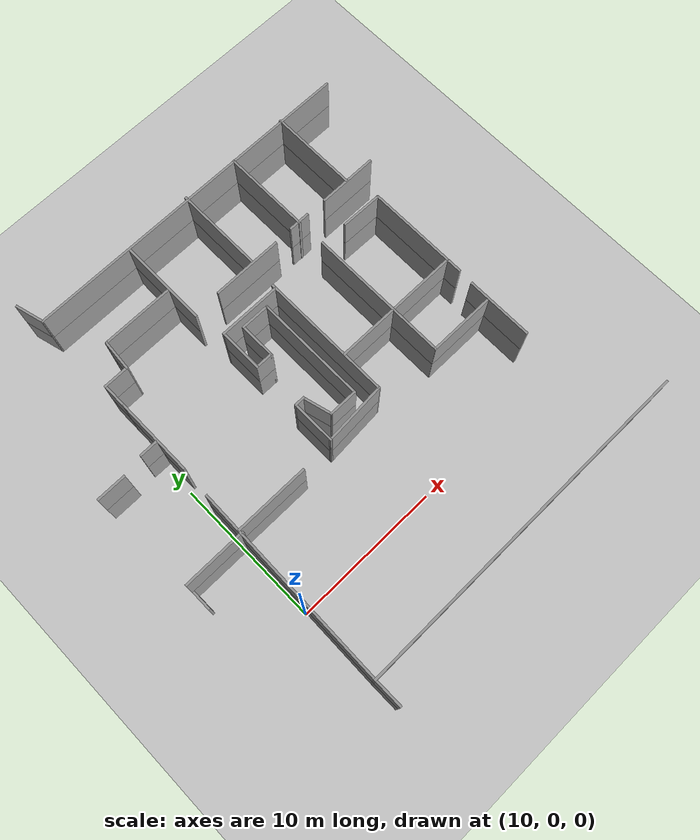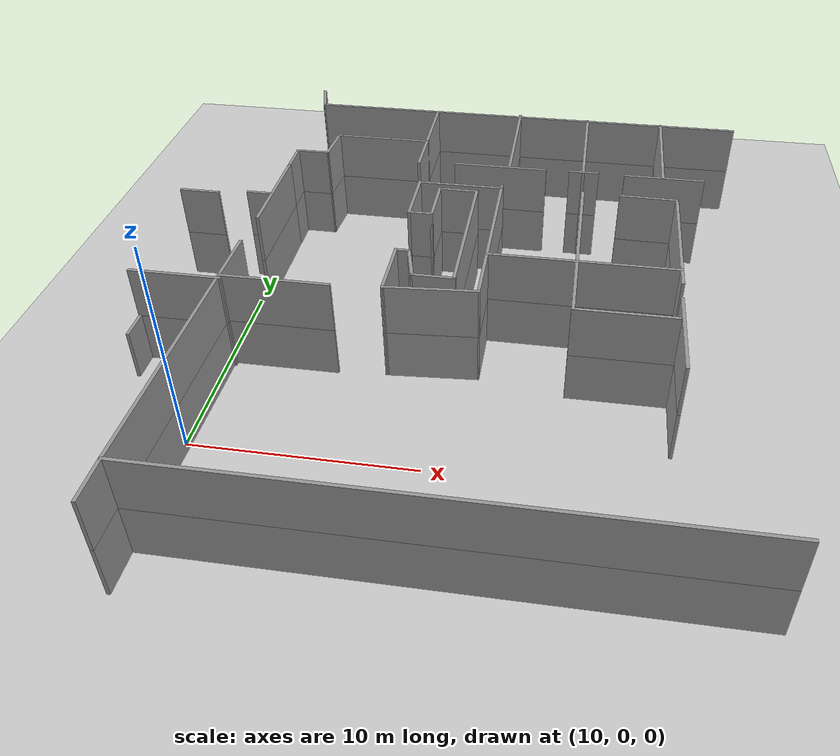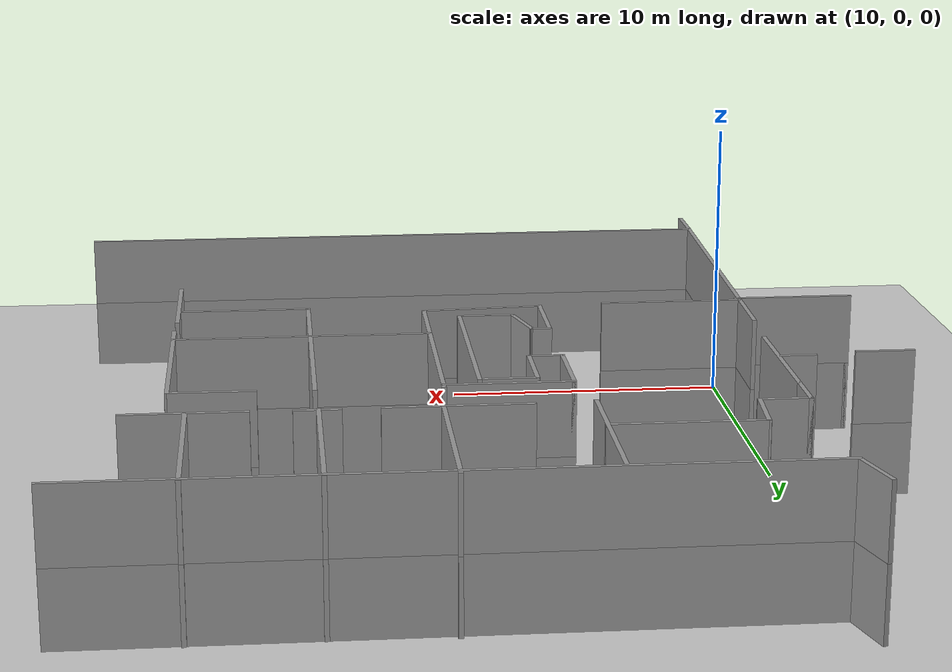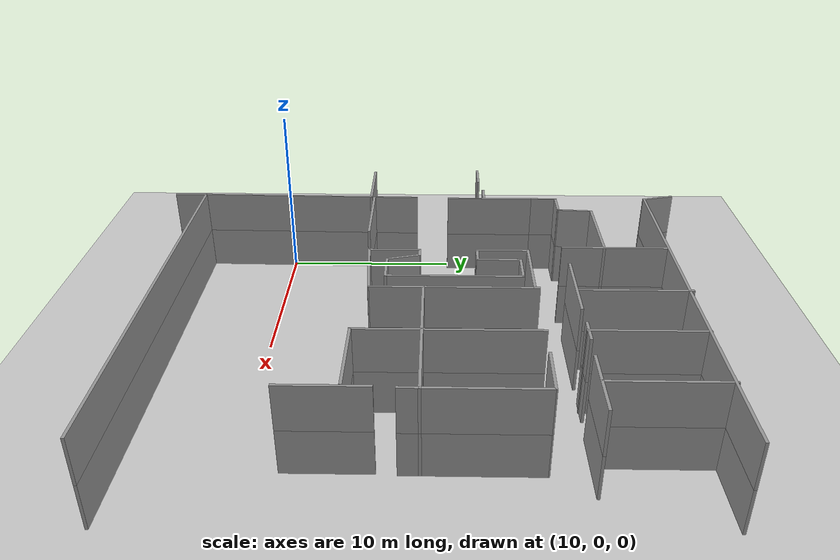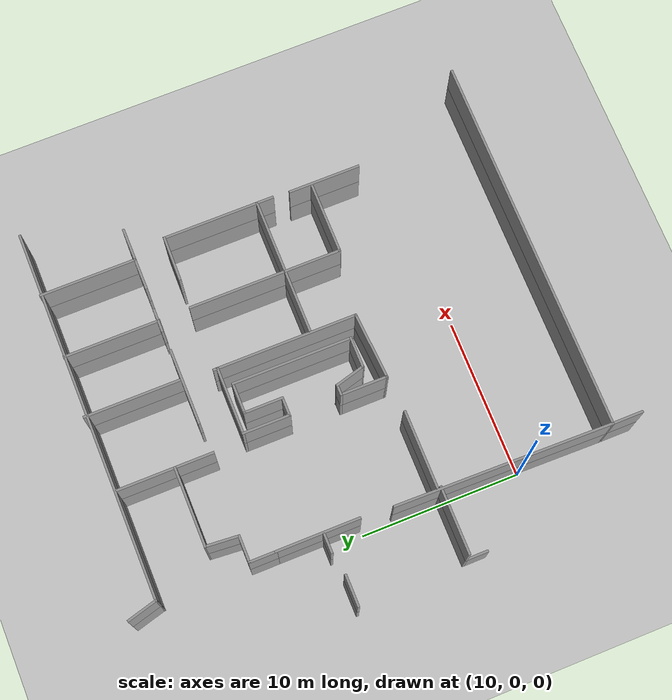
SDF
<sdf version="1.6">
 <world name="default">
  <model name="ground_plane">
   <static>1</static>
   <link name="link">
    <collision name="collision">
     <geometry><plane><normal>0 0 1</normal><size>100 100</size></plane></geometry>
     <surface>
      <contact><collide_bitmask>65535</collide_bitmask></contact>
      <friction><ode><mu>100</mu><mu2>50</mu2></ode></friction>
     </surface>
    </collision>
    <visual name="visual">
     <cast_shadows>0</cast_shadows>
     <geometry><plane><normal>0 0 1</normal><size>100 100</size></plane></geometry>
     <material>
      <script><uri>file://media/materials/scripts/gazebo.material</uri><name>Gazebo/Grey</name></script>
     </material>
    </visual>
   </link>
  </model>
  <model name="bush_refined_2floors">
   <pose>3.42472 8.10808 0 0 -0 0</pose>
   <link name="Wall_1000">
    <collision name="Wall_1000_Collision">
     <geometry><box><size>1.25 0.15 2.5</size></box></geometry>
     <pose>0 0 1.25 0 -0 0</pose>
    </collision>
    <visual name="Wall_1000_Visual">
     <pose>0 0 1.25 0 -0 0</pose>
     <geometry><box><size>1.25 0.15 2.5</size></box></geometry>
     <material>
      <script><uri>file://media/materials/scripts/gazebo.material</uri><name>Gazebo/Grey</name></script>
      <ambient>1 1 1 1</ambient>
     </material>
     <meta><layer>1</layer></meta>
    </visual>
    <pose>14.5533 3.51018 2.5 0 -0 0</pose>
   </link>
   <link name="Wall_1001">
    <collision name="Wall_1001_Collision">
     <geometry><box><size>2.5 0.15 2.5</size></box></geometry>
     <pose>0 0 1.25 0 -0 0</pose>
    </collision>
    <visual name="Wall_1001_Visual">
     <pose>0 0 1.25 0 -0 0</pose>
     <geometry><box><size>2.5 0.15 2.5</size></box></geometry>
     <material>
      <script><uri>file://media/materials/scripts/gazebo.material</uri><name>Gazebo/Grey</name></script>
      <ambient>1 1 1 1</ambient>
     </material>
     <meta><layer>1</layer></meta>
    </visual>
    <pose>15.1033 4.68518 2.5 0 -0 1.5708</pose>
   </link>
   <link name="Wall_1002">
    <collision name="Wall_1002_Collision">
     <geometry><box><size>2 0.15 2.5</size></box></geometry>
     <pose>0 0 1.25 0 -0 0</pose>
    </collision>
    <visual name="Wall_1002_Visual">
     <pose>0 0 1.25 0 -0 0</pose>
     <geometry><box><size>2 0.15 2.5</size></box></geometry>
     <material>
      <script><uri>file://media/materials/scripts/gazebo.material</uri><name>Gazebo/Grey</name></script>
      <ambient>1 1 1 1</ambient>
     </material>
     <meta><layer>1</layer></meta>
    </visual>
    <pose>16.0283 5.86018 2.5 0 -0 0</pose>
   </link>
   <link name="Wall_1003">
    <collision name="Wall_1003_Collision">
     <geometry><box><size>7.5 0.15 2.5</size></box></geometry>
     <pose>0 0 1.25 0 -0 0</pose>
    </collision>
    <visual name="Wall_1003_Visual">
     <pose>0 0 1.25 0 -0 0</pose>
     <geometry><box><size>7.5 0.15 2.5</size></box></geometry>
     <material>
      <script><uri>file://media/materials/scripts/gazebo.material</uri><name>Gazebo/Grey</name></script>
      <ambient>1 1 1 1</ambient>
     </material>
     <meta><layer>1</layer></meta>
    </visual>
    <pose>16.9533 2.18518 2.5 0 -0 -1.5708</pose>
   </link>
   <link name="Wall_1004">
    <collision name="Wall_1004_Collision">
     <geometry><box><size>2 0.15 2.5</size></box></geometry>
     <pose>0 0 1.25 0 -0 0</pose>
    </collision>
    <visual name="Wall_1004_Visual">
     <pose>0 0 1.25 0 -0 0</pose>
     <geometry><box><size>2 0.15 2.5</size></box></geometry>
     <material>
      <script><uri>file://media/materials/scripts/gazebo.material</uri><name>Gazebo/Grey</name></script>
      <ambient>1 1 1 1</ambient>
     </material>
     <meta><layer>1</layer></meta>
    </visual>
    <pose>16.0283 -1.48982 2.5 0 -0 3.14159</pose>
   </link>
   <link name="Wall_1005">
    <collision name="Wall_1005_Collision">
     <geometry><box><size>2 0.15 2.5</size></box></geometry>
     <pose>0 0 1.25 0 -0 0</pose>
    </collision>
    <visual name="Wall_1005_Visual">
     <pose>0 0 1.25 0 -0 0</pose>
     <geometry><box><size>2 0.15 2.5</size></box></geometry>
     <material>
      <script><uri>file://media/materials/scripts/gazebo.material</uri><name>Gazebo/Grey</name></script>
      <ambient>1 1 1 1</ambient>
     </material>
     <meta><layer>1</layer></meta>
    </visual>
    <pose>14.8639 -0.596338 2.5 0 -0 1.8326</pose>
   </link>
   <link name="Wall_1006">
    <collision name="Wall_1006_Collision">
     <geometry><box><size>0.75 0.15 2.5</size></box></geometry>
     <pose>0 0 1.25 0 -0 0</pose>
    </collision>
    <visual name="Wall_1006_Visual">
     <pose>0 0 1.25 0 -0 0</pose>
     <geometry><box><size>0.75 0.15 2.5</size></box></geometry>
     <material>
      <script><uri>file://media/materials/scripts/gazebo.material</uri><name>Gazebo/Grey</name></script>
      <ambient>1 1 1 1</ambient>
     </material>
     <meta><layer>1</layer></meta>
    </visual>
    <pose>14.3245 0.297143 2.5 0 -0 3.14159</pose>
   </link>
   <link name="Wall_1007">
    <collision name="Wall_1007_Collision">
     <geometry><box><size>3 0.15 2.5</size></box></geometry>
     <pose>0 0 1.25 0 -0 0</pose>
    </collision>
    <visual name="Wall_1007_Visual">
     <pose>0 0 1.25 0 -0 0</pose>
     <geometry><box><size>3 0.15 2.5</size></box></geometry>
     <material>
      <script><uri>file://media/materials/scripts/gazebo.material</uri><name>Gazebo/Grey</name></script>
      <ambient>1 1 1 1</ambient>
     </material>
     <meta><layer>1</layer></meta>
    </visual>
    <pose>14.0245 -1.12786 2.5 0 -0 -1.5708</pose>
   </link>
   <link name="Wall_1008">
    <collision name="Wall_1008_Collision">
     <geometry><box><size>4.26553 0.15 2.5</size></box></geometry>
     <pose>0 0 1.25 0 -0 0</pose>
    </collision>
    <visual name="Wall_1008_Visual">
     <pose>0 0 1.25 0 -0 0</pose>
     <geometry><box><size>4.26553 0.15 2.5</size></box></geometry>
     <material>
      <script><uri>file://media/materials/scripts/gazebo.material</uri><name>Gazebo/Grey</name></script>
      <ambient>1 1 1 1</ambient>
     </material>
     <meta><layer>1</layer></meta>
    </visual>
    <pose>16.0778 -2.4164 2.5 0 -0 0.066363</pose>
   </link>
   <link name="Wall_1009">
    <collision name="Wall_1009_Collision">
     <geometry><box><size>5 0.15 2.5</size></box></geometry>
     <pose>0 0 1.25 0 -0 0</pose>
    </collision>
    <visual name="Wall_1009_Visual">
     <pose>0 0 1.25 0 -0 0</pose>
     <geometry><box><size>5 0.15 2.5</size></box></geometry>
     <material>
      <script><uri>file://media/materials/scripts/gazebo.material</uri><name>Gazebo/Grey</name></script>
      <ambient>1 1 1 1</ambient>
     </material>
     <meta><layer>1</layer></meta>
    </visual>
    <pose>9.2924 -2.73465 2.5 0 -0 0</pose>
   </link>
   <link name="Wall_1010">
    <collision name="Wall_1010_Collision">
     <geometry><box><size>13.6092 0.15 2.5</size></box></geometry>
     <pose>0 0 1.25 0 -0 0</pose>
    </collision>
    <visual name="Wall_1010_Visual">
     <pose>0 0 1.25 0 -0 0</pose>
     <geometry><box><size>13.6092 0.15 2.5</size></box></geometry>
     <material>
      <script><uri>file://media/materials/scripts/gazebo.material</uri><name>Gazebo/Grey</name></script>
      <ambient>1 1 1 1</ambient>
     </material>
     <meta><layer>1</layer></meta>
    </visual>
    <pose>6.75021 -6.80477 2.5 0 -0 -1.58821</pose>
   </link>
   <link name="Wall_1011">
    <collision name="Wall_1011_Collision">
     <geometry><box><size>4.25 0.15 2.5</size></box></geometry>
     <pose>0 0 1.25 0 -0 0</pose>
    </collision>
    <visual name="Wall_1011_Visual">
     <pose>0 0 1.25 0 -0 0</pose>
     <geometry><box><size>4.25 0.15 2.5</size></box></geometry>
     <material>
      <script><uri>file://media/materials/scripts/gazebo.material</uri><name>Gazebo/Grey</name></script>
      <ambient>1 1 1 1</ambient>
     </material>
     <meta><layer>1</layer></meta>
    </visual>
    <pose>4.8597 -2.94453 2.5 0 -0 0</pose>
   </link>
   <link name="Wall_1026">
    <collision name="Wall_1026_Collision">
     <geometry><box><size>2 0.15 2.5</size></box></geometry>
     <pose>0 0 1.25 0 -0 0</pose>
    </collision>
    <visual name="Wall_1026_Visual">
     <pose>0 0 1.25 0 -0 0</pose>
     <geometry><box><size>2 0.15 2.5</size></box></geometry>
     <material>
      <script><uri>file://media/materials/scripts/gazebo.material</uri><name>Gazebo/Grey</name></script>
      <ambient>1 1 1 1</ambient>
     </material>
     <meta><layer>1</layer></meta>
    </visual>
    <pose>3.3613 3.95052 2.5 0 -0 0</pose>
   </link>
   <link name="Wall_1027">
    <collision name="Wall_1027_Collision">
     <geometry><box><size>1.25 0.15 2.5</size></box></geometry>
     <pose>0 0 1.25 0 -0 0</pose>
    </collision>
    <visual name="Wall_1027_Visual">
     <pose>0 0 1.25 0 -0 0</pose>
     <geometry><box><size>1.25 0.15 2.5</size></box></geometry>
     <material>
      <script><uri>file://media/materials/scripts/gazebo.material</uri><name>Gazebo/Grey</name></script>
      <ambient>1 1 1 1</ambient>
     </material>
     <meta><layer>1</layer></meta>
    </visual>
    <pose>6.32856 4.20873 2.5 0 -0 0</pose>
   </link>
   <link name="Wall_1028">
    <collision name="Wall_1028_Collision">
     <geometry><box><size>5.25 0.15 2.5</size></box></geometry>
     <pose>0 0 1.25 0 -0 0</pose>
    </collision>
    <visual name="Wall_1028_Visual">
     <pose>0 0 1.25 0 -0 0</pose>
     <geometry><box><size>5.25 0.15 2.5</size></box></geometry>
     <material>
      <script><uri>file://media/materials/scripts/gazebo.material</uri><name>Gazebo/Grey</name></script>
      <ambient>1 1 1 1</ambient>
     </material>
     <meta><layer>1</layer></meta>
    </visual>
    <pose>6.98538 4.55509 2.5 0 -0 -1.5708</pose>
   </link>
   <link name="Wall_1037">
    <collision name="Wall_1037_Collision">
     <geometry><box><size>4 0.15 2.5</size></box></geometry>
     <pose>0 0 1.25 0 -0 0</pose>
    </collision>
    <visual name="Wall_1037_Visual">
     <pose>0 0 1.25 0 -0 0</pose>
     <geometry><box><size>4 0.15 2.5</size></box></geometry>
     <material>
      <script><uri>file://media/materials/scripts/gazebo.material</uri><name>Gazebo/Grey</name></script>
      <ambient>1 1 1 1</ambient>
     </material>
     <meta><layer>1</layer></meta>
    </visual>
    <pose>26.1706 8.50236 2.5 0 -0 0</pose>
   </link>
   <link name="Wall_1038">
    <collision name="Wall_1038_Collision">
     <geometry><box><size>6 0.15 2.5</size></box></geometry>
     <pose>0 0 1.25 0 -0 0</pose>
    </collision>
    <visual name="Wall_1038_Visual">
     <pose>0 0 1.25 0 -0 0</pose>
     <geometry><box><size>6 0.15 2.5</size></box></geometry>
     <material>
      <script><uri>file://media/materials/scripts/gazebo.material</uri><name>Gazebo/Grey</name></script>
      <ambient>1 1 1 1</ambient>
     </material>
     <meta><layer>1</layer></meta>
    </visual>
    <pose>26.1209 11.4734 2.5 0 -0 -1.5708</pose>
   </link>
   <link name="Wall_1039">
    <collision name="Wall_1039_Collision">
     <geometry><box><size>6 0.15 2.5</size></box></geometry>
     <pose>0 0 1.25 0 -0 0</pose>
    </collision>
    <visual name="Wall_1039_Visual">
     <pose>0 0 1.25 0 -0 0</pose>
     <geometry><box><size>6 0.15 2.5</size></box></geometry>
     <material>
      <script><uri>file://media/materials/scripts/gazebo.material</uri><name>Gazebo/Grey</name></script>
      <ambient>1 1 1 1</ambient>
     </material>
     <meta><layer>1</layer></meta>
    </visual>
    <pose>22.0958 11.4276 2.5 0 -0 -1.5708</pose>
   </link>
   <link name="Wall_1040">
    <collision name="Wall_1040_Collision">
     <geometry><box><size>1.5 0.15 2.5</size></box></geometry>
     <pose>0 0 1.25 0 -0 0</pose>
    </collision>
    <visual name="Wall_1040_Visual">
     <pose>0 0 1.25 0 -0 0</pose>
     <geometry><box><size>1.5 0.15 2.5</size></box></geometry>
     <material>
      <script><uri>file://media/materials/scripts/gazebo.material</uri><name>Gazebo/Grey</name></script>
      <ambient>1 1 1 1</ambient>
     </material>
     <meta><layer>1</layer></meta>
    </visual>
    <pose>22.1304 8.5436 2.5 0 -0 0</pose>
   </link>
   <link name="Wall_1041">
    <collision name="Wall_1041_Collision">
     <geometry><box><size>4.75 0.15 2.5</size></box></geometry>
     <pose>0 0 1.25 0 -0 0</pose>
    </collision>
    <visual name="Wall_1041_Visual">
     <pose>0 0 1.25 0 -0 0</pose>
     <geometry><box><size>4.75 0.15 2.5</size></box></geometry>
     <material>
      <script><uri>file://media/materials/scripts/gazebo.material</uri><name>Gazebo/Grey</name></script>
      <ambient>1 1 1 1</ambient>
     </material>
     <meta><layer>1</layer></meta>
    </visual>
    <pose>17.829 8.49786 2.5 0 -0 3.14159</pose>
   </link>
   <link name="Wall_1042">
    <collision name="Wall_1042_Collision">
     <geometry><box><size>6 0.15 2.5</size></box></geometry>
     <pose>0 0 1.25 0 -0 0</pose>
    </collision>
    <visual name="Wall_1042_Visual">
     <pose>0 0 1.25 0 -0 0</pose>
     <geometry><box><size>6 0.15 2.5</size></box></geometry>
     <material>
      <script><uri>file://media/materials/scripts/gazebo.material</uri><name>Gazebo/Grey</name></script>
      <ambient>1 1 1 1</ambient>
     </material>
     <meta><layer>1</layer></meta>
    </visual>
    <pose>18.2993 11.5648 2.5 0 -0 -1.5708</pose>
   </link>
   <link name="Wall_1043">
    <collision name="Wall_1043_Collision">
     <geometry><box><size>6 0.15 2.5</size></box></geometry>
     <pose>0 0 1.25 0 -0 0</pose>
    </collision>
    <visual name="Wall_1043_Visual">
     <pose>0 0 1.25 0 -0 0</pose>
     <geometry><box><size>6 0.15 2.5</size></box></geometry>
     <material>
      <script><uri>file://media/materials/scripts/gazebo.material</uri><name>Gazebo/Grey</name></script>
      <ambient>1 1 1 1</ambient>
     </material>
     <meta><layer>1</layer></meta>
    </visual>
    <pose>13.5881 11.2904 2.5 0 -0 -1.5708</pose>
   </link>
   <link name="Wall_1044">
    <collision name="Wall_1044_Collision">
     <geometry><box><size>5 0.15 2.5</size></box></geometry>
     <pose>0 0 1.25 0 -0 0</pose>
    </collision>
    <visual name="Wall_1044_Visual">
     <pose>0 0 1.25 0 -0 0</pose>
     <geometry><box><size>5 0.15 2.5</size></box></geometry>
     <material>
      <script><uri>file://media/materials/scripts/gazebo.material</uri><name>Gazebo/Grey</name></script>
      <ambient>1 1 1 1</ambient>
     </material>
     <meta><layer>1</layer></meta>
    </visual>
    <pose>11.1646 10.6934 2.5 0 -0 0</pose>
   </link>
   <link name="Wall_1045">
    <collision name="Wall_1045_Collision">
     <geometry><box><size>1.75 0.15 2.5</size></box></geometry>
     <pose>0 0 1.25 0 -0 0</pose>
    </collision>
    <visual name="Wall_1045_Visual">
     <pose>0 0 1.25 0 -0 0</pose>
     <geometry><box><size>1.75 0.15 2.5</size></box></geometry>
     <material>
      <script><uri>file://media/materials/scripts/gazebo.material</uri><name>Gazebo/Grey</name></script>
      <ambient>1 1 1 1</ambient>
     </material>
     <meta><layer>1</layer></meta>
    </visual>
    <pose>6.98538 7.90509 2.5 0 -0 1.5708</pose>
   </link>
   <link name="Wall_1046">
    <collision name="Wall_1046_Collision">
     <geometry><box><size>1.75 0.15 2.5</size></box></geometry>
     <pose>0 0 1.25 0 -0 0</pose>
    </collision>
    <visual name="Wall_1046_Visual">
     <pose>0 0 1.25 0 -0 0</pose>
     <geometry><box><size>1.75 0.15 2.5</size></box></geometry>
     <material>
      <script><uri>file://media/materials/scripts/gazebo.material</uri><name>Gazebo/Grey</name></script>
      <ambient>1 1 1 1</ambient>
     </material>
     <meta><layer>1</layer></meta>
    </visual>
    <pose>7.78538 8.70509 2.5 0 -0 0</pose>
   </link>
   <link name="Wall_1047">
    <collision name="Wall_1047_Collision">
     <geometry><box><size>2.14428 0.15 2.5</size></box></geometry>
     <pose>0 0 1.25 0 -0 0</pose>
    </collision>
    <visual name="Wall_1047_Visual">
     <pose>0 0 1.25 0 -0 0</pose>
     <geometry><box><size>2.14428 0.15 2.5</size></box></geometry>
     <material>
      <script><uri>file://media/materials/scripts/gazebo.material</uri><name>Gazebo/Grey</name></script>
      <ambient>1 1 1 1</ambient>
     </material>
     <meta><layer>1</layer></meta>
    </visual>
    <pose>8.6625 9.69924 2.5 0 -0 1.49337</pose>
   </link>
   <link name="Wall_1048">
    <collision name="Wall_1048_Collision">
     <geometry><box><size>9.53767 0.15 2.5</size></box></geometry>
     <pose>0 0 1.25 0 -0 0</pose>
    </collision>
    <visual name="Wall_1048_Visual">
     <pose>0 0 1.25 0 -0 0</pose>
     <geometry><box><size>9.53767 0.15 2.5</size></box></geometry>
     <material>
      <script><uri>file://media/materials/scripts/gazebo.material</uri><name>Gazebo/Grey</name></script>
      <ambient>1 1 1 1</ambient>
     </material>
     <meta><layer>1</layer></meta>
    </visual>
    <pose>22.1579 1.82713 2.5 0 -0 -1.5708</pose>
   </link>
   <link name="Wall_1049">
    <collision name="Wall_1049_Collision">
     <geometry><box><size>4.5 0.15 2.5</size></box></geometry>
     <pose>0 0 1.25 0 -0 0</pose>
    </collision>
    <visual name="Wall_1049_Visual">
     <pose>0 0 1.25 0 -0 0</pose>
     <geometry><box><size>4.5 0.15 2.5</size></box></geometry>
     <material>
      <script><uri>file://media/materials/scripts/gazebo.material</uri><name>Gazebo/Grey</name></script>
      <ambient>1 1 1 1</ambient>
     </material>
     <meta><layer>1</layer></meta>
    </visual>
    <pose>24.3329 -2.89286 2.5 0 -0 0</pose>
   </link>
   <link name="Wall_1050">
    <collision name="Wall_1050_Collision">
     <geometry><box><size>2.85741 0.15 2.5</size></box></geometry>
     <pose>0 0 1.25 0 -0 0</pose>
    </collision>
    <visual name="Wall_1050_Visual">
     <pose>0 0 1.25 0 -0 0</pose>
     <geometry><box><size>2.85741 0.15 2.5</size></box></geometry>
     <material>
      <script><uri>file://media/materials/scripts/gazebo.material</uri><name>Gazebo/Grey</name></script>
      <ambient>1 1 1 1</ambient>
     </material>
     <meta><layer>1</layer></meta>
    </visual>
    <pose>25.3826 6.45369 2.5 0 -0 -0.017394</pose>
   </link>
   <link name="Wall_111">
    <collision name="Wall_111_Collision">
     <geometry><box><size>2 0.15 2.5</size></box></geometry>
     <pose>0 0 1.25 0 -0 0</pose>
    </collision>
    <visual name="Wall_111_Visual">
     <pose>0 0 1.25 0 -0 0</pose>
     <geometry><box><size>2 0.15 2.5</size></box></geometry>
     <material>
      <script><uri>file://media/materials/scripts/gazebo.material</uri><name>Gazebo/Grey</name></script>
      <ambient>1 1 1 1</ambient>
     </material>
     <meta><layer>0</layer></meta>
    </visual>
    <pose>3.3613 3.95052 0 0 -0 0</pose>
   </link>
   <link name="Wall_113">
    <collision name="Wall_113_Collision">
     <geometry><box><size>1.25 0.15 2.5</size></box></geometry>
     <pose>0 0 1.25 0 -0 0</pose>
    </collision>
    <visual name="Wall_113_Visual">
     <pose>0 0 1.25 0 -0 0</pose>
     <geometry><box><size>1.25 0.15 2.5</size></box></geometry>
     <material>
      <script><uri>file://media/materials/scripts/gazebo.material</uri><name>Gazebo/Grey</name></script>
      <ambient>1 1 1 1</ambient>
     </material>
     <meta><layer>0</layer></meta>
    </visual>
    <pose>6.32856 4.20873 0 0 -0 0</pose>
   </link>
   <link name="Wall_115">
    <collision name="Wall_115_Collision">
     <geometry><box><size>5.25 0.15 2.5</size></box></geometry>
     <pose>0 0 1.25 0 -0 0</pose>
    </collision>
    <visual name="Wall_115_Visual">
     <pose>0 0 1.25 0 -0 0</pose>
     <geometry><box><size>5.25 0.15 2.5</size></box></geometry>
     <material>
      <script><uri>file://media/materials/scripts/gazebo.material</uri><name>Gazebo/Grey</name></script>
      <ambient>1 1 1 1</ambient>
     </material>
     <meta><layer>0</layer></meta>
    </visual>
    <pose>6.98538 4.55509 0 0 -0 -1.5708</pose>
   </link>
   <link name="Wall_130">
    <collision name="Wall_130_Collision">
     <geometry><box><size>4 0.15 2.5</size></box></geometry>
     <pose>0 0 1.25 0 -0 0</pose>
    </collision>
    <visual name="Wall_130_Visual">
     <pose>0 0 1.25 0 -0 0</pose>
     <geometry><box><size>4 0.15 2.5</size></box></geometry>
     <material>
      <script><uri>file://media/materials/scripts/gazebo.material</uri><name>Gazebo/Grey</name></script>
      <ambient>1 1 1 1</ambient>
     </material>
     <meta><layer>0</layer></meta>
    </visual>
    <pose>26.1706 8.50236 0 0 -0 0</pose>
   </link>
   <link name="Wall_132">
    <collision name="Wall_132_Collision">
     <geometry><box><size>6 0.15 2.5</size></box></geometry>
     <pose>0 0 1.25 0 -0 0</pose>
    </collision>
    <visual name="Wall_132_Visual">
     <pose>0 0 1.25 0 -0 0</pose>
     <geometry><box><size>6 0.15 2.5</size></box></geometry>
     <material>
      <script><uri>file://media/materials/scripts/gazebo.material</uri><name>Gazebo/Grey</name></script>
      <ambient>1 1 1 1</ambient>
     </material>
     <meta><layer>0</layer></meta>
    </visual>
    <pose>26.1209 11.4734 0 0 -0 -1.5708</pose>
   </link>
   <link name="Wall_134">
    <collision name="Wall_134_Collision">
     <geometry><box><size>6 0.15 2.5</size></box></geometry>
     <pose>0 0 1.25 0 -0 0</pose>
    </collision>
    <visual name="Wall_134_Visual">
     <pose>0 0 1.25 0 -0 0</pose>
     <geometry><box><size>6 0.15 2.5</size></box></geometry>
     <material>
      <script><uri>file://media/materials/scripts/gazebo.material</uri><name>Gazebo/Grey</name></script>
      <ambient>1 1 1 1</ambient>
     </material>
     <meta><layer>0</layer></meta>
    </visual>
    <pose>22.0958 11.4276 0 0 -0 -1.5708</pose>
   </link>
   <link name="Wall_136">
    <collision name="Wall_136_Collision">
     <geometry><box><size>1.5 0.15 2.5</size></box></geometry>
     <pose>0 0 1.25 0 -0 0</pose>
    </collision>
    <visual name="Wall_136_Visual">
     <pose>0 0 1.25 0 -0 0</pose>
     <geometry><box><size>1.5 0.15 2.5</size></box></geometry>
     <material>
      <script><uri>file://media/materials/scripts/gazebo.material</uri><name>Gazebo/Grey</name></script>
      <ambient>1 1 1 1</ambient>
     </material>
     <meta><layer>0</layer></meta>
    </visual>
    <pose>22.1304 8.5436 0 0 -0 0</pose>
   </link>
   <link name="Wall_138">
    <collision name="Wall_138_Collision">
     <geometry><box><size>4.75 0.15 2.5</size></box></geometry>
     <pose>0 0 1.25 0 -0 0</pose>
    </collision>
    <visual name="Wall_138_Visual">
     <pose>0 0 1.25 0 -0 0</pose>
     <geometry><box><size>4.75 0.15 2.5</size></box></geometry>
     <material>
      <script><uri>file://media/materials/scripts/gazebo.material</uri><name>Gazebo/Grey</name></script>
      <ambient>1 1 1 1</ambient>
     </material>
     <meta><layer>0</layer></meta>
    </visual>
    <pose>17.829 8.49786 0 0 -0 3.14159</pose>
   </link>
   <link name="Wall_140">
    <collision name="Wall_140_Collision">
     <geometry><box><size>6 0.15 2.5</size></box></geometry>
     <pose>0 0 1.25 0 -0 0</pose>
    </collision>
    <visual name="Wall_140_Visual">
     <pose>0 0 1.25 0 -0 0</pose>
     <geometry><box><size>6 0.15 2.5</size></box></geometry>
     <material>
      <script><uri>file://media/materials/scripts/gazebo.material</uri><name>Gazebo/Grey</name></script>
      <ambient>1 1 1 1</ambient>
     </material>
     <meta><layer>0</layer></meta>
    </visual>
    <pose>18.2993 11.5648 0 0 -0 -1.5708</pose>
   </link>
   <link name="Wall_142">
    <collision name="Wall_142_Collision">
     <geometry><box><size>6 0.15 2.5</size></box></geometry>
     <pose>0 0 1.25 0 -0 0</pose>
    </collision>
    <visual name="Wall_142_Visual">
     <pose>0 0 1.25 0 -0 0</pose>
     <geometry><box><size>6 0.15 2.5</size></box></geometry>
     <material>
      <script><uri>file://media/materials/scripts/gazebo.material</uri><name>Gazebo/Grey</name></script>
      <ambient>1 1 1 1</ambient>
     </material>
     <meta><layer>0</layer></meta>
    </visual>
    <pose>13.5881 11.2904 0 0 -0 -1.5708</pose>
   </link>
   <link name="Wall_144">
    <collision name="Wall_144_Collision">
     <geometry><box><size>5 0.15 2.5</size></box></geometry>
     <pose>0 0 1.25 0 -0 0</pose>
    </collision>
    <visual name="Wall_144_Visual">
     <pose>0 0 1.25 0 -0 0</pose>
     <geometry><box><size>5 0.15 2.5</size></box></geometry>
     <material>
      <script><uri>file://media/materials/scripts/gazebo.material</uri><name>Gazebo/Grey</name></script>
      <ambient>1 1 1 1</ambient>
     </material>
     <meta><layer>0</layer></meta>
    </visual>
    <pose>11.1646 10.6934 0 0 -0 0</pose>
   </link>
   <link name="Wall_146">
    <collision name="Wall_146_Collision">
     <geometry><box><size>1.75 0.15 2.5</size></box></geometry>
     <pose>0 0 1.25 0 -0 0</pose>
    </collision>
    <visual name="Wall_146_Visual">
     <pose>0 0 1.25 0 -0 0</pose>
     <geometry><box><size>1.75 0.15 2.5</size></box></geometry>
     <material>
      <script><uri>file://media/materials/scripts/gazebo.material</uri><name>Gazebo/Grey</name></script>
      <ambient>1 1 1 1</ambient>
     </material>
     <meta><layer>0</layer></meta>
    </visual>
    <pose>6.98538 7.90509 0 0 -0 1.5708</pose>
   </link>
   <link name="Wall_147">
    <collision name="Wall_147_Collision">
     <geometry><box><size>1.75 0.15 2.5</size></box></geometry>
     <pose>0 0 1.25 0 -0 0</pose>
    </collision>
    <visual name="Wall_147_Visual">
     <pose>0 0 1.25 0 -0 0</pose>
     <geometry><box><size>1.75 0.15 2.5</size></box></geometry>
     <material>
      <script><uri>file://media/materials/scripts/gazebo.material</uri><name>Gazebo/Grey</name></script>
      <ambient>1 1 1 1</ambient>
     </material>
     <meta><layer>0</layer></meta>
    </visual>
    <pose>7.78538 8.70509 0 0 -0 0</pose>
   </link>
   <link name="Wall_148">
    <collision name="Wall_148_Collision">
     <geometry><box><size>2.14428 0.15 2.5</size></box></geometry>
     <pose>0 0 1.25 0 -0 0</pose>
    </collision>
    <visual name="Wall_148_Visual">
     <pose>0 0 1.25 0 -0 0</pose>
     <geometry><box><size>2.14428 0.15 2.5</size></box></geometry>
     <material>
      <script><uri>file://media/materials/scripts/gazebo.material</uri><name>Gazebo/Grey</name></script>
      <ambient>1 1 1 1</ambient>
     </material>
     <meta><layer>0</layer></meta>
    </visual>
    <pose>8.6625 9.69924 0 0 -0 1.49337</pose>
   </link>
   <link name="Wall_150">
    <collision name="Wall_150_Collision">
     <geometry><box><size>9.53767 0.15 2.5</size></box></geometry>
     <pose>0 0 1.25 0 -0 0</pose>
    </collision>
    <visual name="Wall_150_Visual">
     <pose>0 0 1.25 0 -0 0</pose>
     <geometry><box><size>9.53767 0.15 2.5</size></box></geometry>
     <material>
      <script><uri>file://media/materials/scripts/gazebo.material</uri><name>Gazebo/Grey</name></script>
      <ambient>1 1 1 1</ambient>
     </material>
     <meta><layer>0</layer></meta>
    </visual>
    <pose>22.1579 1.82713 0 0 -0 -1.5708</pose>
   </link>
   <link name="Wall_152">
    <collision name="Wall_152_Collision">
     <geometry><box><size>4.5 0.15 2.5</size></box></geometry>
     <pose>0 0 1.25 0 -0 0</pose>
    </collision>
    <visual name="Wall_152_Visual">
     <pose>0 0 1.25 0 -0 0</pose>
     <geometry><box><size>4.5 0.15 2.5</size></box></geometry>
     <material>
      <script><uri>file://media/materials/scripts/gazebo.material</uri><name>Gazebo/Grey</name></script>
      <ambient>1 1 1 1</ambient>
     </material>
     <meta><layer>0</layer></meta>
    </visual>
    <pose>24.3329 -2.89286 0 0 -0 0</pose>
   </link>
   <link name="Wall_155">
    <collision name="Wall_155_Collision">
     <geometry><box><size>2.85741 0.15 2.5</size></box></geometry>
     <pose>0 0 1.25 0 -0 0</pose>
    </collision>
    <visual name="Wall_155_Visual">
     <pose>0 0 1.25 0 -0 0</pose>
     <geometry><box><size>2.85741 0.15 2.5</size></box></geometry>
     <material>
      <script><uri>file://media/materials/scripts/gazebo.material</uri><name>Gazebo/Grey</name></script>
      <ambient>1 1 1 1</ambient>
     </material>
     <meta><layer>0</layer></meta>
    </visual>
    <pose>25.3826 6.45369 0 0 -0 -0.017394</pose>
   </link>
   <link name="Wall_4">
    <collision name="Wall_4_Collision">
     <geometry><box><size>2 0.15 2.5</size></box></geometry>
     <pose>0 0 1.25 0 -0 0</pose>
    </collision>
    <visual name="Wall_4_Visual">
     <pose>0 0 1.25 0 -0 0</pose>
     <geometry><box><size>2 0.15 2.5</size></box></geometry>
     <material>
      <script><uri>file://media/materials/scripts/gazebo.material</uri><name>Gazebo/Grey</name></script>
      <ambient>1 1 1 1</ambient>
     </material>
     <meta><layer>0</layer></meta>
    </visual>
    <pose>6.69588 15.2138 0 0 -0 -1.309</pose>
   </link>
   <link name="Wall_5">
    <collision name="Wall_5_Collision">
     <geometry><box><size>23.25 0.15 2.5</size></box></geometry>
     <pose>0 0 1.25 0 -0 0</pose>
    </collision>
    <visual name="Wall_5_Visual">
     <pose>0 0 1.25 0 -0 0</pose>
     <geometry><box><size>23.25 0.15 2.5</size></box></geometry>
     <material>
      <script><uri>file://media/materials/scripts/gazebo.material</uri><name>Gazebo/Grey</name></script>
      <ambient>1 1 1 1</ambient>
     </material>
     <meta><layer>0</layer></meta>
    </visual>
    <pose>18.4853 14.3204 0 0 -0 0</pose>
   </link>
   <link name="Wall_58">
    <collision name="Wall_58_Collision">
     <geometry><box><size>2 0.15 2.5</size></box></geometry>
     <pose>0 0 1.25 0 -0 0</pose>
    </collision>
    <visual name="Wall_58_Visual">
     <pose>0 0 1.25 0 -0 0</pose>
     <geometry><box><size>2 0.15 2.5</size></box></geometry>
     <material>
      <script><uri>file://media/materials/scripts/gazebo.material</uri><name>Gazebo/Grey</name></script>
      <ambient>1 1 1 1</ambient>
     </material>
     <meta><layer>0</layer></meta>
    </visual>
    <pose>6.63303 -14.4584 0 0 -0 1.5708</pose>
   </link>
   <link name="Wall_59">
    <collision name="Wall_59_Collision">
     <geometry><box><size>23.75 0.15 2.5</size></box></geometry>
     <pose>0 0 1.25 0 -0 0</pose>
    </collision>
    <visual name="Wall_59_Visual">
     <pose>0 0 1.25 0 -0 0</pose>
     <geometry><box><size>23.75 0.15 2.5</size></box></geometry>
     <material>
      <script><uri>file://media/materials/scripts/gazebo.material</uri><name>Gazebo/Grey</name></script>
      <ambient>1 1 1 1</ambient>
     </material>
     <meta><layer>0</layer></meta>
    </visual>
    <pose>18.433 -13.5334 0 0 -0 0</pose>
   </link>
   <link name="Wall_63">
    <collision name="Wall_63_Collision">
     <geometry><box><size>4.5 0.15 2.5</size></box></geometry>
     <pose>0 0 1.25 0 -0 0</pose>
    </collision>
    <visual name="Wall_63_Visual">
     <pose>0 0 1.25 0 -0 0</pose>
     <geometry><box><size>4.5 0.15 2.5</size></box></geometry>
     <material>
      <script><uri>file://media/materials/scripts/gazebo.material</uri><name>Gazebo/Grey</name></script>
      <ambient>1 1 1 1</ambient>
     </material>
     <meta><layer>0</layer></meta>
    </visual>
    <pose>26.6662 -3.72033 0 0 -0 -1.5708</pose>
   </link>
   <link name="Wall_65">
    <collision name="Wall_65_Collision">
     <geometry><box><size>7 0.15 2.5</size></box></geometry>
     <pose>0 0 1.25 0 -0 0</pose>
    </collision>
    <visual name="Wall_65_Visual">
     <pose>0 0 1.25 0 -0 0</pose>
     <geometry><box><size>7 0.15 2.5</size></box></geometry>
     <material>
      <script><uri>file://media/materials/scripts/gazebo.material</uri><name>Gazebo/Grey</name></script>
      <ambient>1 1 1 1</ambient>
     </material>
     <meta><layer>0</layer></meta>
    </visual>
    <pose>26.7361 3.00514 0 0 -0 -1.5708</pose>
   </link>
   <link name="Wall_67">
    <collision name="Wall_67_Collision">
     <geometry><box><size>8.75 0.15 2.5</size></box></geometry>
     <pose>0 0 1.25 0 -0 0</pose>
    </collision>
    <visual name="Wall_67_Visual">
     <pose>0 0 1.25 0 -0 0</pose>
     <geometry><box><size>8.75 0.15 2.5</size></box></geometry>
     <material>
      <script><uri>file://media/materials/scripts/gazebo.material</uri><name>Gazebo/Grey</name></script>
      <ambient>1 1 1 1</ambient>
     </material>
     <meta><layer>0</layer></meta>
    </visual>
    <pose>22.4361 0.553479 0 0 -0 3.14159</pose>
   </link>
   <link name="Wall_69">
    <collision name="Wall_69_Collision">
     <geometry><box><size>9 0.15 2.5</size></box></geometry>
     <pose>0 0 1.25 0 -0 0</pose>
    </collision>
    <visual name="Wall_69_Visual">
     <pose>0 0 1.25 0 -0 0</pose>
     <geometry><box><size>9 0.15 2.5</size></box></geometry>
     <material>
      <script><uri>file://media/materials/scripts/gazebo.material</uri><name>Gazebo/Grey</name></script>
      <ambient>1 1 1 1</ambient>
     </material>
     <meta><layer>0</layer></meta>
    </visual>
    <pose>18.131 2.14506 0 0 -0 -1.5708</pose>
   </link>
   <link name="Wall_71">
    <collision name="Wall_71_Collision">
     <geometry><box><size>4.25 0.15 2.5</size></box></geometry>
     <pose>0 0 1.25 0 -0 0</pose>
    </collision>
    <visual name="Wall_71_Visual">
     <pose>0 0 1.25 0 -0 0</pose>
     <geometry><box><size>4.25 0.15 2.5</size></box></geometry>
     <material>
      <script><uri>file://media/materials/scripts/gazebo.material</uri><name>Gazebo/Grey</name></script>
      <ambient>1 1 1 1</ambient>
     </material>
     <meta><layer>0</layer></meta>
    </visual>
    <pose>16.0533 6.36018 0 0 -0 0</pose>
   </link>
   <link name="Wall_74">
    <collision name="Wall_74_Collision">
     <geometry><box><size>3 0.15 2.5</size></box></geometry>
     <pose>0 0 1.25 0 -0 0</pose>
    </collision>
    <visual name="Wall_74_Visual">
     <pose>0 0 1.25 0 -0 0</pose>
     <geometry><box><size>3 0.15 2.5</size></box></geometry>
     <material>
      <script><uri>file://media/materials/scripts/gazebo.material</uri><name>Gazebo/Grey</name></script>
      <ambient>1 1 1 1</ambient>
     </material>
     <meta><layer>0</layer></meta>
    </visual>
    <pose>14.0033 4.93518 0 0 -0 -1.5708</pose>
   </link>
   <link name="Wall_75">
    <collision name="Wall_75_Collision">
     <geometry><box><size>1.25 0.15 2.5</size></box></geometry>
     <pose>0 0 1.25 0 -0 0</pose>
    </collision>
    <visual name="Wall_75_Visual">
     <pose>0 0 1.25 0 -0 0</pose>
     <geometry><box><size>1.25 0.15 2.5</size></box></geometry>
     <material>
      <script><uri>file://media/materials/scripts/gazebo.material</uri><name>Gazebo/Grey</name></script>
      <ambient>1 1 1 1</ambient>
     </material>
     <meta><layer>0</layer></meta>
    </visual>
    <pose>14.5533 3.51018 0 0 -0 0</pose>
   </link>
   <link name="Wall_76">
    <collision name="Wall_76_Collision">
     <geometry><box><size>2.5 0.15 2.5</size></box></geometry>
     <pose>0 0 1.25 0 -0 0</pose>
    </collision>
    <visual name="Wall_76_Visual">
     <pose>0 0 1.25 0 -0 0</pose>
     <geometry><box><size>2.5 0.15 2.5</size></box></geometry>
     <material>
      <script><uri>file://media/materials/scripts/gazebo.material</uri><name>Gazebo/Grey</name></script>
      <ambient>1 1 1 1</ambient>
     </material>
     <meta><layer>0</layer></meta>
    </visual>
    <pose>15.1033 4.68518 0 0 -0 1.5708</pose>
   </link>
   <link name="Wall_77">
    <collision name="Wall_77_Collision">
     <geometry><box><size>2 0.15 2.5</size></box></geometry>
     <pose>0 0 1.25 0 -0 0</pose>
    </collision>
    <visual name="Wall_77_Visual">
     <pose>0 0 1.25 0 -0 0</pose>
     <geometry><box><size>2 0.15 2.5</size></box></geometry>
     <material>
      <script><uri>file://media/materials/scripts/gazebo.material</uri><name>Gazebo/Grey</name></script>
      <ambient>1 1 1 1</ambient>
     </material>
     <meta><layer>0</layer></meta>
    </visual>
    <pose>16.0283 5.86018 0 0 -0 0</pose>
   </link>
   <link name="Wall_78">
    <collision name="Wall_78_Collision">
     <geometry><box><size>7.5 0.15 2.5</size></box></geometry>
     <pose>0 0 1.25 0 -0 0</pose>
    </collision>
    <visual name="Wall_78_Visual">
     <pose>0 0 1.25 0 -0 0</pose>
     <geometry><box><size>7.5 0.15 2.5</size></box></geometry>
     <material>
      <script><uri>file://media/materials/scripts/gazebo.material</uri><name>Gazebo/Grey</name></script>
      <ambient>1 1 1 1</ambient>
     </material>
     <meta><layer>0</layer></meta>
    </visual>
    <pose>16.9533 2.18518 0 0 -0 -1.5708</pose>
   </link>
   <link name="Wall_79">
    <collision name="Wall_79_Collision">
     <geometry><box><size>2 0.15 2.5</size></box></geometry>
     <pose>0 0 1.25 0 -0 0</pose>
    </collision>
    <visual name="Wall_79_Visual">
     <pose>0 0 1.25 0 -0 0</pose>
     <geometry><box><size>2 0.15 2.5</size></box></geometry>
     <material>
      <script><uri>file://media/materials/scripts/gazebo.material</uri><name>Gazebo/Grey</name></script>
      <ambient>1 1 1 1</ambient>
     </material>
     <meta><layer>0</layer></meta>
    </visual>
    <pose>16.0283 -1.48982 0 0 -0 3.14159</pose>
   </link>
   <link name="Wall_80">
    <collision name="Wall_80_Collision">
     <geometry><box><size>2 0.15 2.5</size></box></geometry>
     <pose>0 0 1.25 0 -0 0</pose>
    </collision>
    <visual name="Wall_80_Visual">
     <pose>0 0 1.25 0 -0 0</pose>
     <geometry><box><size>2 0.15 2.5</size></box></geometry>
     <material>
      <script><uri>file://media/materials/scripts/gazebo.material</uri><name>Gazebo/Grey</name></script>
      <ambient>1 1 1 1</ambient>
     </material>
     <meta><layer>0</layer></meta>
    </visual>
    <pose>14.8639 -0.596339 0 0 -0 1.8326</pose>
   </link>
   <link name="Wall_81">
    <collision name="Wall_81_Collision">
     <geometry><box><size>0.75 0.15 2.5</size></box></geometry>
     <pose>0 0 1.25 0 -0 0</pose>
    </collision>
    <visual name="Wall_81_Visual">
     <pose>0 0 1.25 0 -0 0</pose>
     <geometry><box><size>0.75 0.15 2.5</size></box></geometry>
     <material>
      <script><uri>file://media/materials/scripts/gazebo.material</uri><name>Gazebo/Grey</name></script>
      <ambient>1 1 1 1</ambient>
     </material>
     <meta><layer>0</layer></meta>
    </visual>
    <pose>14.3245 0.297143 0 0 -0 3.14159</pose>
   </link>
   <link name="Wall_82">
    <collision name="Wall_82_Collision">
     <geometry><box><size>3 0.15 2.5</size></box></geometry>
     <pose>0 0 1.25 0 -0 0</pose>
    </collision>
    <visual name="Wall_82_Visual">
     <pose>0 0 1.25 0 -0 0</pose>
     <geometry><box><size>3 0.15 2.5</size></box></geometry>
     <material>
      <script><uri>file://media/materials/scripts/gazebo.material</uri><name>Gazebo/Grey</name></script>
      <ambient>1 1 1 1</ambient>
     </material>
     <meta><layer>0</layer></meta>
    </visual>
    <pose>14.0245 -1.12786 0 0 -0 -1.5708</pose>
   </link>
   <link name="Wall_83">
    <collision name="Wall_83_Collision">
     <geometry><box><size>4.26553 0.15 2.5</size></box></geometry>
     <pose>0 0 1.25 0 -0 0</pose>
    </collision>
    <visual name="Wall_83_Visual">
     <pose>0 0 1.25 0 -0 0</pose>
     <geometry><box><size>4.26553 0.15 2.5</size></box></geometry>
     <material>
      <script><uri>file://media/materials/scripts/gazebo.material</uri><name>Gazebo/Grey</name></script>
      <ambient>1 1 1 1</ambient>
     </material>
     <meta><layer>0</layer></meta>
    </visual>
    <pose>16.0778 -2.4164 0 0 -0 0.066363</pose>
   </link>
   <link name="Wall_86">
    <collision name="Wall_86_Collision">
     <geometry><box><size>5 0.15 2.5</size></box></geometry>
     <pose>0 0 1.25 0 -0 0</pose>
    </collision>
    <visual name="Wall_86_Visual">
     <pose>0 0 1.25 0 -0 0</pose>
     <geometry><box><size>5 0.15 2.5</size></box></geometry>
     <material>
      <script><uri>file://media/materials/scripts/gazebo.material</uri><name>Gazebo/Grey</name></script>
      <ambient>1 1 1 1</ambient>
     </material>
     <meta><layer>0</layer></meta>
    </visual>
    <pose>9.2924 -2.73465 0 0 -0 0</pose>
   </link>
   <link name="Wall_89">
    <collision name="Wall_89_Collision">
     <geometry><box><size>13.6092 0.15 2.5</size></box></geometry>
     <pose>0 0 1.25 0 -0 0</pose>
    </collision>
    <visual name="Wall_89_Visual">
     <pose>0 0 1.25 0 -0 0</pose>
     <geometry><box><size>13.6092 0.15 2.5</size></box></geometry>
     <material>
      <script><uri>file://media/materials/scripts/gazebo.material</uri><name>Gazebo/Grey</name></script>
      <ambient>1 1 1 1</ambient>
     </material>
     <meta><layer>0</layer></meta>
    </visual>
    <pose>6.75021 -6.80477 0 0 -0 -1.58821</pose>
   </link>
   <link name="Wall_91">
    <collision name="Wall_91_Collision">
     <geometry><box><size>4.25 0.15 2.5</size></box></geometry>
     <pose>0 0 1.25 0 -0 0</pose>
    </collision>
    <visual name="Wall_91_Visual">
     <pose>0 0 1.25 0 -0 0</pose>
     <geometry><box><size>4.25 0.15 2.5</size></box></geometry>
     <material>
      <script><uri>file://media/materials/scripts/gazebo.material</uri><name>Gazebo/Grey</name></script>
      <ambient>1 1 1 1</ambient>
     </material>
     <meta><layer>0</layer></meta>
    </visual>
    <pose>4.8597 -2.94453 0 0 -0 0</pose>
   </link>
   <link name="Wall_93">
    <collision name="Wall_93_Collision">
     <geometry><box><size>1.5 0.15 2.5</size></box></geometry>
     <pose>0 0 1.25 0 -0 0</pose>
    </collision>
    <visual name="Wall_93_Visual">
     <pose>0 0 1.25 0 -0 0</pose>
     <geometry><box><size>1.5 0.15 2.5</size></box></geometry>
     <material>
      <script><uri>file://media/materials/scripts/gazebo.material</uri><name>Gazebo/Grey</name></script>
      <ambient>1 1 1 1</ambient>
     </material>
     <meta><layer>0</layer></meta>
    </visual>
    <pose>2.80971 -3.61953 0 0 -0 -1.5708</pose>
   </link>
   <link name="Wall_951">
    <collision name="Wall_951_Collision">
     <geometry><box><size>2 0.15 2.5</size></box></geometry>
     <pose>0 0 1.25 0 -0 0</pose>
    </collision>
    <visual name="Wall_951_Visual">
     <pose>0 0 1.25 0 -0 0</pose>
     <geometry><box><size>2 0.15 2.5</size></box></geometry>
     <material>
      <script><uri>file://media/materials/scripts/gazebo.material</uri><name>Gazebo/Grey</name></script>
      <ambient>1 1 1 1</ambient>
     </material>
     <meta><layer>1</layer></meta>
    </visual>
    <pose>6.69588 15.2138 2.5 0 -0 -1.309</pose>
   </link>
   <link name="Wall_952">
    <collision name="Wall_952_Collision">
     <geometry><box><size>23.25 0.15 2.5</size></box></geometry>
     <pose>0 0 1.25 0 -0 0</pose>
    </collision>
    <visual name="Wall_952_Visual">
     <pose>0 0 1.25 0 -0 0</pose>
     <geometry><box><size>23.25 0.15 2.5</size></box></geometry>
     <material>
      <script><uri>file://media/materials/scripts/gazebo.material</uri><name>Gazebo/Grey</name></script>
      <ambient>1 1 1 1</ambient>
     </material>
     <meta><layer>1</layer></meta>
    </visual>
    <pose>18.4853 14.3204 2.5 0 -0 0</pose>
   </link>
   <link name="Wall_991">
    <collision name="Wall_991_Collision">
     <geometry><box><size>2 0.15 2.5</size></box></geometry>
     <pose>0 0 1.25 0 -0 0</pose>
    </collision>
    <visual name="Wall_991_Visual">
     <pose>0 0 1.25 0 -0 0</pose>
     <geometry><box><size>2 0.15 2.5</size></box></geometry>
     <material>
      <script><uri>file://media/materials/scripts/gazebo.material</uri><name>Gazebo/Grey</name></script>
      <ambient>1 1 1 1</ambient>
     </material>
     <meta><layer>1</layer></meta>
    </visual>
    <pose>6.63303 -14.4584 2.5 0 -0 1.5708</pose>
   </link>
   <link name="Wall_992">
    <collision name="Wall_992_Collision">
     <geometry><box><size>23.75 0.15 2.5</size></box></geometry>
     <pose>0 0 1.25 0 -0 0</pose>
    </collision>
    <visual name="Wall_992_Visual">
     <pose>0 0 1.25 0 -0 0</pose>
     <geometry><box><size>23.75 0.15 2.5</size></box></geometry>
     <material>
      <script><uri>file://media/materials/scripts/gazebo.material</uri><name>Gazebo/Grey</name></script>
      <ambient>1 1 1 1</ambient>
     </material>
     <meta><layer>1</layer></meta>
    </visual>
    <pose>18.433 -13.5334 2.5 0 -0 0</pose>
   </link>
   <link name="Wall_994">
    <collision name="Wall_994_Collision">
     <geometry><box><size>4.5 0.15 2.5</size></box></geometry>
     <pose>0 0 1.25 0 -0 0</pose>
    </collision>
    <visual name="Wall_994_Visual">
     <pose>0 0 1.25 0 -0 0</pose>
     <geometry><box><size>4.5 0.15 2.5</size></box></geometry>
     <material>
      <script><uri>file://media/materials/scripts/gazebo.material</uri><name>Gazebo/Grey</name></script>
      <ambient>1 1 1 1</ambient>
     </material>
     <meta><layer>1</layer></meta>
    </visual>
    <pose>26.6662 -3.72033 2.5 0 -0 -1.5708</pose>
   </link>
   <link name="Wall_995">
    <collision name="Wall_995_Collision">
     <geometry><box><size>7 0.15 2.5</size></box></geometry>
     <pose>0 0 1.25 0 -0 0</pose>
    </collision>
    <visual name="Wall_995_Visual">
     <pose>0 0 1.25 0 -0 0</pose>
     <geometry><box><size>7 0.15 2.5</size></box></geometry>
     <material>
      <script><uri>file://media/materials/scripts/gazebo.material</uri><name>Gazebo/Grey</name></script>
      <ambient>1 1 1 1</ambient>
     </material>
     <meta><layer>1</layer></meta>
    </visual>
    <pose>26.7361 3.00514 2.5 0 -0 -1.5708</pose>
   </link>
   <link name="Wall_996">
    <collision name="Wall_996_Collision">
     <geometry><box><size>8.75 0.15 2.5</size></box></geometry>
     <pose>0 0 1.25 0 -0 0</pose>
    </collision>
    <visual name="Wall_996_Visual">
     <pose>0 0 1.25 0 -0 0</pose>
     <geometry><box><size>8.75 0.15 2.5</size></box></geometry>
     <material>
      <script><uri>file://media/materials/scripts/gazebo.material</uri><name>Gazebo/Grey</name></script>
      <ambient>1 1 1 1</ambient>
     </material>
     <meta><layer>1</layer></meta>
    </visual>
    <pose>22.4361 0.553479 2.5 0 -0 3.14159</pose>
   </link>
   <link name="Wall_997">
    <collision name="Wall_997_Collision">
     <geometry><box><size>9 0.15 2.5</size></box></geometry>
     <pose>0 0 1.25 0 -0 0</pose>
    </collision>
    <visual name="Wall_997_Visual">
     <pose>0 0 1.25 0 -0 0</pose>
     <geometry><box><size>9 0.15 2.5</size></box></geometry>
     <material>
      <script><uri>file://media/materials/scripts/gazebo.material</uri><name>Gazebo/Grey</name></script>
      <ambient>1 1 1 1</ambient>
     </material>
     <meta><layer>1</layer></meta>
    </visual>
    <pose>18.131 2.14506 2.5 0 -0 -1.5708</pose>
   </link>
   <link name="Wall_998">
    <collision name="Wall_998_Collision">
     <geometry><box><size>4.25 0.15 2.5</size></box></geometry>
     <pose>0 0 1.25 0 -0 0</pose>
    </collision>
    <visual name="Wall_998_Visual">
     <pose>0 0 1.25 0 -0 0</pose>
     <geometry><box><size>4.25 0.15 2.5</size></box></geometry>
     <material>
      <script><uri>file://media/materials/scripts/gazebo.material</uri><name>Gazebo/Grey</name></script>
      <ambient>1 1 1 1</ambient>
     </material>
     <meta><layer>1</layer></meta>
    </visual>
    <pose>16.0533 6.36018 2.5 0 -0 0</pose>
   </link>
   <link name="Wall_999">
    <collision name="Wall_999_Collision">
     <geometry><box><size>3 0.15 2.5</size></box></geometry>
     <pose>0 0 1.25 0 -0 0</pose>
    </collision>
    <visual name="Wall_999_Visual">
     <pose>0 0 1.25 0 -0 0</pose>
     <geometry><box><size>3 0.15 2.5</size></box></geometry>
     <material>
      <script><uri>file://media/materials/scripts/gazebo.material</uri><name>Gazebo/Grey</name></script>
      <ambient>1 1 1 1</ambient>
     </material>
     <meta><layer>1</layer></meta>
    </visual>
    <pose>14.0033 4.93518 2.5 0 -0 -1.5708</pose>
   </link>
   <static>1</static>
  </model>
 </world>
</sdf>
